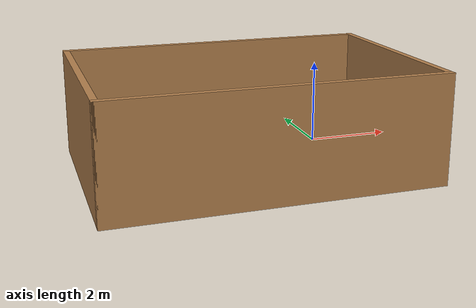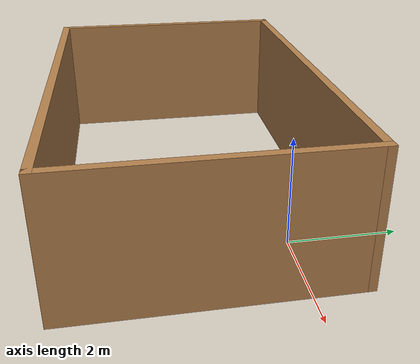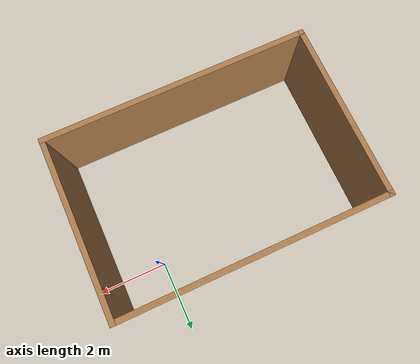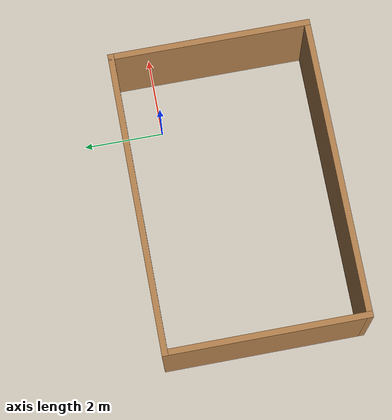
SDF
<?xml version='1.0'?>
<sdf version='1.7'>
  <model name='5x7_5'>
    <pose>-2.285 -1.485 0 0 -0 0</pose>
    <link name='Wall_0'>
      <collision name='Wall_0_Collision'>
        <geometry>
          <box>
            <size>7.5 0.15 2.5</size>
          </box>
        </geometry>
        <pose>0 0 1.25 0 -0 0</pose>
      </collision>
      <visual name='Wall_0_Visual'>
        <pose>0 0 1.25 0 -0 0</pose>
        <geometry>
          <box>
            <size>7.5 0.15 2.5</size>
          </box>
        </geometry>
        <material>
          <script>
            <uri>file://media/materials/scripts/gazebo.material</uri>
            <name>Gazebo/Wood</name>
          </script>
          <ambient>1 1 1 1</ambient>
        </material>
        <meta>
          <layer>0</layer>
        </meta>
      </visual>
      <pose>-0 -2.425 0 0 -0 0</pose>
    </link>
    <link name='Wall_1'>
      <collision name='Wall_1_Collision'>
        <geometry>
          <box>
            <size>5 0.15 2.5</size>
          </box>
        </geometry>
        <pose>0 0 1.25 0 -0 0</pose>
      </collision>
      <visual name='Wall_1_Visual'>
        <pose>0 0 1.25 0 -0 0</pose>
        <geometry>
          <box>
            <size>5 0.15 2.5</size>
          </box>
        </geometry>
        <material>
          <script>
            <uri>file://media/materials/scripts/gazebo.material</uri>
            <name>Gazebo/Wood</name>
          </script>
          <ambient>1 1 1 1</ambient>
        </material>
        <meta>
          <layer>0</layer>
        </meta>
      </visual>
      <pose>3.675 -0 0 0 -0 1.5708</pose>
    </link>
    <link name='Wall_4'>
      <collision name='Wall_4_Collision'>
        <geometry>
          <box>
            <size>5 0.15 2.5</size>
          </box>
        </geometry>
        <pose>0 0 1.25 0 -0 0</pose>
      </collision>
      <visual name='Wall_4_Visual'>
        <pose>0 0 1.25 0 -0 0</pose>
        <geometry>
          <box>
            <size>5 0.15 2.5</size>
          </box>
        </geometry>
        <material>
          <script>
            <uri>file://media/materials/scripts/gazebo.material</uri>
            <name>Gazebo/Wood</name>
          </script>
          <ambient>1 1 1 1</ambient>
        </material>
        <meta>
          <layer>0</layer>
        </meta>
      </visual>
      <pose>-3.675 -0 0 0 -0 1.5708</pose>
    </link>
    <link name='Wall_5'>
      <collision name='Wall_5_Collision'>
        <geometry>
          <box>
            <size>7.5 0.15 2.5</size>
          </box>
        </geometry>
        <pose>0 0 1.25 0 -0 0</pose>
      </collision>
      <visual name='Wall_5_Visual'>
        <pose>0 0 1.25 0 -0 0</pose>
        <geometry>
          <box>
            <size>7.5 0.15 2.5</size>
          </box>
        </geometry>
        <material>
          <script>
            <uri>file://media/materials/scripts/gazebo.material</uri>
            <name>Gazebo/Wood</name>
          </script>
          <ambient>1 1 1 1</ambient>
        </material>
        <meta>
          <layer>0</layer>
        </meta>
      </visual>
      <pose>-0 2.425 0 0 -0 0</pose>
    </link>
    <static>1</static>
  </model>
</sdf>
